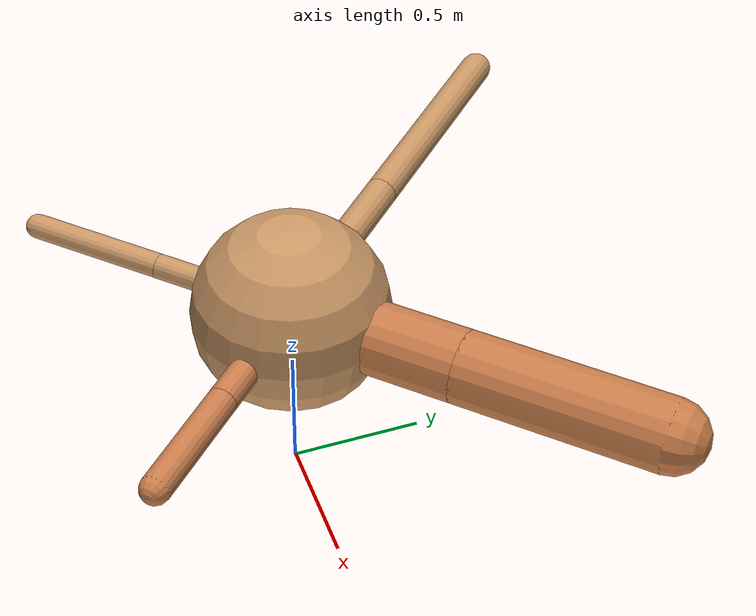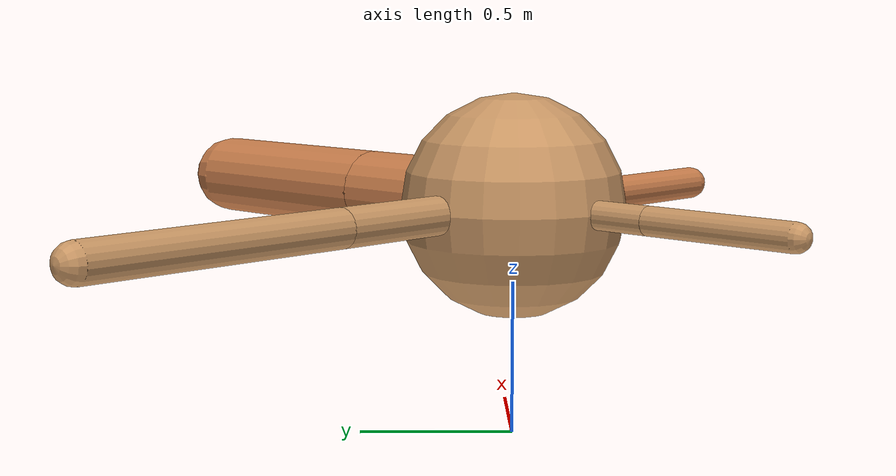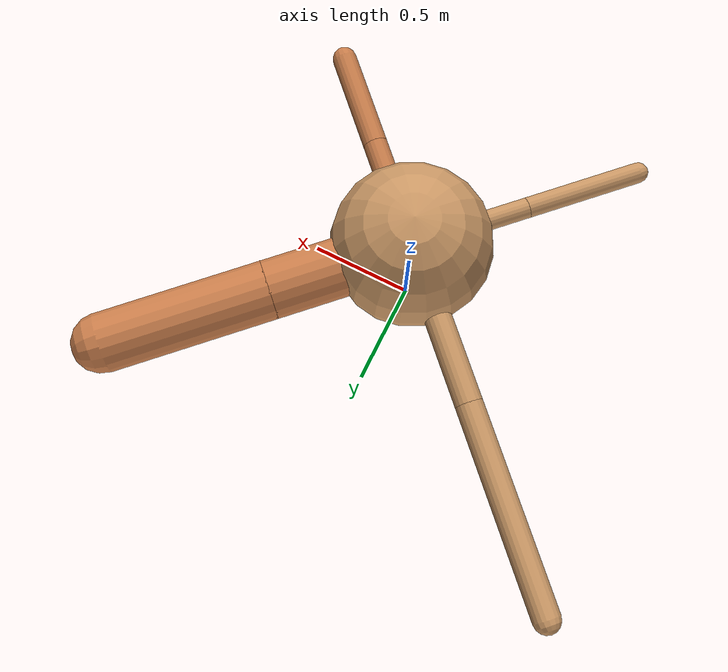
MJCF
<?xml version="1.0" ?>
<mujoco model="ant">

	<compiler angle="degree" coordinate="local" inertiafromgeom="true"/>

	<option integrator="RK4" timestep="0.01"/>

	<custom>

		<numeric data="0.0 0.0 0.55 1.0 0.0 0.0 0.0 0.0 1.0 0.0 -1.0 0.0 -1.0 0.0 1.0" name="init_qpos"/>

	</custom>

	<default>

		<joint armature="1" damping="1" limited="true"/>

		<geom conaffinity="0" condim="3" density="5.0" friction="1.5 0.1 0.1" margin="0.01" rgba="0.8 0.6 0.4 1"/>

	</default>

	<worldbody>

		<body name="torso" pos="0 0 0.75">

			<geom name="torso_geom" pos="0 0 0" size="0.3649942922807042" type="sphere"/>

			<!--joint armature="0" damping="0" limited="false" margin="0.01" name="root" pos="0 0 0" type="free"/-->

			<body name="front_left_leg" pos="0 0 0">

				<geom fromto="0 0 0 0.2 0.2 0" name="aux_1_geom" size="0.13439971518774319" type="capsule" rgba=".8 .5 .3 1"/>

				<body name="aux_1" pos="0.2 0.2 0">

					<joint axis="0 0 1" name="hip_1" pos="0.0 0.0 0.0" range="-40 40" type="hinge"/>

					<geom fromto="0 0 0 0.2671180722136221 0.2671180722136221 0" name="left_leg_geom" size="0.13439971518774319" type="capsule" rgba=".8 .5 .3 1"/>

					<body pos="0.2671180722136221 0.2671180722136221 0" name="front_left_foot">

						<joint axis="-1 1 0" name="ankle_1" pos="0.0 0.0 0.0" range="30 100" type="hinge"/>

						<geom fromto="0 0 0 0.5342361444272442 0.5342361444272442 0" name="left_ankle_geom" size="0.13439971518774319" type="capsule" rgba=".8 .5 .3 1"/>

					</body>

				</body>

			</body>

			<body name="front_right_leg" pos="0 0 0">

				<geom fromto="0 0 0 -0.2 0.2 0" name="aux_2_geom" size="0.06187754226691262" type="capsule"/>

				<body name="aux_2" pos="-0.2 0.2 0">

					<joint axis="0 0 1" name="hip_2" pos="0.0 0.0 0.0" range="-40 40" type="hinge"/>

					<geom fromto="0 0 0 -0.33228476244437744 0.33228476244437744 0" name="right_leg_geom" size="0.06187754226691262" type="capsule"/>

					<body pos="-0.33228476244437744 0.33228476244437744 0" name="front_right_foot">

						<joint axis="1 1 0" name="ankle_2" pos="0.0 0.0 0.0" range="-100 -30" type="hinge"/>

						<geom fromto="0 0 0 -0.6645695248887549 0.6645695248887549 0" name="right_ankle_geom" size="0.06187754226691262" type="capsule"/>

					</body>

				</body>

			</body>

			<body name="left_back_leg" pos="0 0 0">

				<geom fromto="0 0 0 -0.2 -0.2 0" name="aux_3_geom" size="0.046252451229315636" type="capsule"/>

				<body name="aux_3" pos="-0.2 -0.2 0">

					<joint axis="0 0 1" name="hip_3" pos="0.0 0.0 0.0" range="-40 40" type="hinge"/>

					<geom fromto="0 0 0 -0.1869290002594685 -0.1869290002594685 0" name="back_leg_geom" size="0.046252451229315636" type="capsule"/>

					<body pos="-0.1869290002594685 -0.1869290002594685 0" name="left_back_foot">

						<joint axis="-1 1 0" name="ankle_3" pos="0.0 0.0 0.0" range="-100 -30" type="hinge"/>

						<geom fromto="0 0 0 -0.373858000518937 -0.373858000518937 0" name="third_ankle_geom" size="0.046252451229315636" type="capsule"/>

					</body>

				</body>

			</body>

			<body name="right_back_leg" pos="0 0 0">

				<geom fromto="0 0 0 0.2 -0.2 0" name="aux_4_geom" size="0.05481465439202051" type="capsule" rgba=".8 .5 .3 1"/>

				<body name="aux_4" pos="0.2 -0.2 0">

					<joint axis="0 0 1" name="hip_4" pos="0.0 0.0 0.0" range="-40 40" type="hinge"/>

					<geom fromto="0 0 0 0.15691930493996736 -0.15691930493996736 0" name="rightback_leg_geom" size="0.05481465439202051" type="capsule" rgba=".8 .5 .3 1"/>

					<body pos="0.15691930493996736 -0.15691930493996736 0" name="right_back_foot">

						<joint axis="1 1 0" name="ankle_4" pos="0.0 0.0 0.0" range="30 100" type="hinge"/>

						<geom fromto="0 0 0 0.3138386098799347 -0.3138386098799347 0" name="fourth_ankle_geom" size="0.05481465439202051" type="capsule" rgba=".8 .5 .3 1"/>

					</body>

				</body>

			</body>

		</body>

	</worldbody>

	<actuator>

		<motor ctrllimited="true" ctrlrange="-1.0 1.0" joint="hip_4" gear="150"/>

		<motor ctrllimited="true" ctrlrange="-1.0 1.0" joint="ankle_4" gear="150"/>

		<motor ctrllimited="true" ctrlrange="-1.0 1.0" joint="hip_1" gear="150"/>

		<motor ctrllimited="true" ctrlrange="-1.0 1.0" joint="ankle_1" gear="150"/>

		<motor ctrllimited="true" ctrlrange="-1.0 1.0" joint="hip_2" gear="150"/>

		<motor ctrllimited="true" ctrlrange="-1.0 1.0" joint="ankle_2" gear="150"/>

		<motor ctrllimited="true" ctrlrange="-1.0 1.0" joint="hip_3" gear="150"/>

		<motor ctrllimited="true" ctrlrange="-1.0 1.0" joint="ankle_3" gear="150"/>

	</actuator>

</mujoco>
